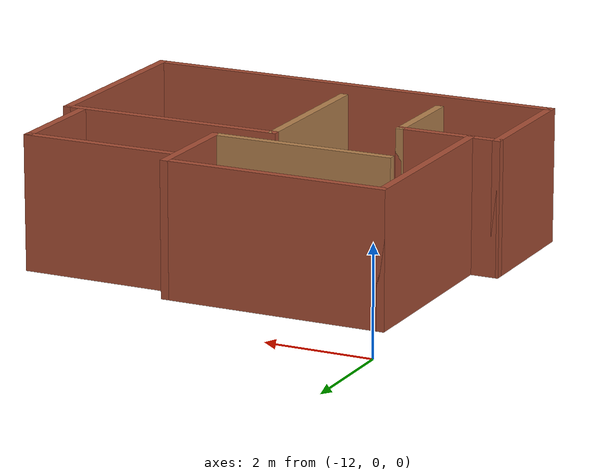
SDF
<?xml version='1.0'?>
<sdf version='1.6'>
  <model name='Room1'>
    <pose frame=''>-8.095 -4.44 0 0 -0 0</pose>
    <link name='Wall_0'>
      <collision name='Wall_0_Collision'>
        <geometry>
          <box>
            <size>2.5 0.15 2.5</size>
          </box>
        </geometry>
        <pose frame=''>0 0 1.25 0 -0 0</pose>
      </collision>
      <visual name='Wall_0_Visual'>
        <pose frame=''>0 0 1.25 0 -0 0</pose>
        <geometry>
          <box>
            <size>2.5 0.15 2.5</size>
          </box>
        </geometry>
        <material>
          <script>
            <uri>file://media/materials/scripts/gazebo.material</uri>
            <name>Gazebo/Bricks</name>
          </script>
          <ambient>1 1 1 1</ambient>
        </material>
        <meta>
          <layer>0</layer>
        </meta>
      </visual>
      <pose frame=''>-3.925 -1.825 0 0 -0 -1.5708</pose>
    </link>
    <link name='Wall_1'>
      <collision name='Wall_1_Collision'>
        <geometry>
          <box>
            <size>8 0.15 2.5</size>
          </box>
        </geometry>
        <pose frame=''>0 0 1.25 0 -0 0</pose>
      </collision>
      <visual name='Wall_1_Visual'>
        <pose frame=''>0 0 1.25 0 -0 0</pose>
        <geometry>
          <box>
            <size>8 0.15 2.5</size>
          </box>
        </geometry>
        <material>
          <script>
            <uri>file://media/materials/scripts/gazebo.material</uri>
            <name>Gazebo/Bricks</name>
          </script>
          <ambient>1 1 1 1</ambient>
        </material>
        <meta>
          <layer>0</layer>
        </meta>
      </visual>
      <pose frame=''>-0 -3 0 0 -0 0</pose>
    </link>
    <link name='Wall_10'>
      <collision name='Wall_10_Collision'>
        <geometry>
          <box>
            <size>2 0.15 2.5</size>
          </box>
        </geometry>
        <pose frame=''>0 0 1.25 0 -0 0</pose>
      </collision>
      <visual name='Wall_10_Visual'>
        <pose frame=''>0 0 1.25 0 -0 0</pose>
        <geometry>
          <box>
            <size>2 0.15 2.5</size>
          </box>
        </geometry>
        <material>
          <script>
            <uri>file://media/materials/scripts/gazebo.material</uri>
            <name>Gazebo/Bricks</name>
          </script>
          <ambient>1 1 1 1</ambient>
        </material>
        <meta>
          <layer>0</layer>
        </meta>
      </visual>
      <pose frame=''>0.695 2.075 0 0 -0 -1.5708</pose>
    </link>
    <link name='Wall_11'>
      <collision name='Wall_11_Collision'>
        <geometry>
          <box>
            <size>3.5 0.15 2.5</size>
          </box>
        </geometry>
        <pose frame=''>0 0 1.25 0 -0 0</pose>
      </collision>
      <visual name='Wall_11_Visual'>
        <pose frame=''>0 0 1.25 0 -0 0</pose>
        <geometry>
          <box>
            <size>3.5 0.15 2.5</size>
          </box>
        </geometry>
        <material>
          <script>
            <uri>file://media/materials/scripts/gazebo.material</uri>
            <name>Gazebo/Wood</name>
          </script>
          <ambient>1 1 1 1</ambient>
        </material>
        <meta>
          <layer>0</layer>
        </meta>
      </visual>
      <pose frame=''>-0.98 1.15 0 0 -0 3.14159</pose>
    </link>
    <link name='Wall_13'>
      <collision name='Wall_13_Collision'>
        <geometry>
          <box>
            <size>3 0.15 2.5</size>
          </box>
        </geometry>
        <pose frame=''>0 0 1.25 0 -0 0</pose>
      </collision>
      <visual name='Wall_13_Visual'>
        <pose frame=''>0 0 1.25 0 -0 0</pose>
        <geometry>
          <box>
            <size>3 0.15 2.5</size>
          </box>
        </geometry>
        <material>
          <script>
            <uri>file://media/materials/scripts/gazebo.material</uri>
            <name>Gazebo/Bricks</name>
          </script>
          <ambient>1 1 1 1</ambient>
        </material>
        <meta>
          <layer>0</layer>
        </meta>
      </visual>
      <pose frame=''>2.18506 2.57948 0 0 -0 0</pose>
    </link>
    <link name='Wall_14'>
      <collision name='Wall_14_Collision'>
        <geometry>
          <box>
            <size>1.96704 0.15 2.5</size>
          </box>
        </geometry>
        <pose frame=''>0 0 1.25 0 -0 0</pose>
      </collision>
      <visual name='Wall_14_Visual'>
        <pose frame=''>0 0 1.25 0 -0 0</pose>
        <geometry>
          <box>
            <size>1.96704 0.15 2.5</size>
          </box>
        </geometry>
        <material>
          <script>
            <uri>file://media/materials/scripts/gazebo.material</uri>
            <name>Gazebo/Bricks</name>
          </script>
          <ambient>1 1 1 1</ambient>
        </material>
        <meta>
          <layer>0</layer>
        </meta>
      </visual>
      <pose frame=''>3.6088 1.65575 0 0 -0 -1.57218</pose>
    </link>
    <link name='Wall_17'>
      <collision name='Wall_17_Collision'>
        <geometry>
          <box>
            <size>3 0.15 2.5</size>
          </box>
        </geometry>
        <pose frame=''>0 0 1.25 0 -0 0</pose>
      </collision>
      <visual name='Wall_17_Visual'>
        <pose frame=''>0 0 1.25 0 -0 0</pose>
        <geometry>
          <box>
            <size>3 0.15 2.5</size>
          </box>
        </geometry>
        <material>
          <script>
            <uri>file://media/materials/scripts/gazebo.material</uri>
            <name>Gazebo/Wood</name>
          </script>
          <ambient>1 1 1 1</ambient>
        </material>
        <meta>
          <layer>0</layer>
        </meta>
      </visual>
      <pose frame=''>-0.175 -0.825 0 0 -0 -1.5708</pose>
    </link>
    <link name='Wall_2'>
      <collision name='Wall_2_Collision'>
        <geometry>
          <box>
            <size>3.75 0.15 2.5</size>
          </box>
        </geometry>
        <pose frame=''>0 0 1.25 0 -0 0</pose>
      </collision>
      <visual name='Wall_2_Visual'>
        <pose frame=''>0 0 1.25 0 -0 0</pose>
        <geometry>
          <box>
            <size>3.75 0.15 2.5</size>
          </box>
        </geometry>
        <material>
          <script>
            <uri>file://media/materials/scripts/gazebo.material</uri>
            <name>Gazebo/Bricks</name>
          </script>
          <ambient>1 1 1 1</ambient>
        </material>
        <meta>
          <layer>0</layer>
        </meta>
      </visual>
      <pose frame=''>3.925 -1.2 0 0 -0 1.5708</pose>
    </link>
    <link name='Wall_3'>
      <collision name='Wall_3_Collision'>
        <geometry>
          <box>
            <size>4.25 0.15 2.5</size>
          </box>
        </geometry>
        <pose frame=''>0 0 1.25 0 -0 0</pose>
      </collision>
      <visual name='Wall_3_Visual'>
        <pose frame=''>0 0 1.25 0 -0 0</pose>
        <geometry>
          <box>
            <size>4.25 0.15 2.5</size>
          </box>
        </geometry>
        <material>
          <script>
            <uri>file://media/materials/scripts/gazebo.material</uri>
            <name>Gazebo/Bricks</name>
          </script>
          <ambient>1 1 1 1</ambient>
        </material>
        <meta>
          <layer>0</layer>
        </meta>
      </visual>
      <pose frame=''>1.875 0.6 0 0 -0 3.14159</pose>
    </link>
    <link name='Wall_5'>
      <collision name='Wall_5_Collision'>
        <geometry>
          <box>
            <size>2 0.15 2.5</size>
          </box>
        </geometry>
        <pose frame=''>0 0 1.25 0 -0 0</pose>
      </collision>
      <visual name='Wall_5_Visual'>
        <pose frame=''>0 0 1.25 0 -0 0</pose>
        <geometry>
          <box>
            <size>2 0.15 2.5</size>
          </box>
        </geometry>
        <material>
          <script>
            <uri>file://media/materials/scripts/gazebo.material</uri>
            <name>Gazebo/Bricks</name>
          </script>
          <ambient>1 1 1 1</ambient>
        </material>
        <meta>
          <layer>0</layer>
        </meta>
      </visual>
      <pose frame=''>-3 -0.65 0 0 -0 0</pose>
    </link>
    <link name='Wall_6'>
      <collision name='Wall_6_Collision'>
        <geometry>
          <box>
            <size>1.75 0.15 2.5</size>
          </box>
        </geometry>
        <pose frame=''>0 0 1.25 0 -0 0</pose>
      </collision>
      <visual name='Wall_6_Visual'>
        <pose frame=''>0 0 1.25 0 -0 0</pose>
        <geometry>
          <box>
            <size>1.75 0.15 2.5</size>
          </box>
        </geometry>
        <material>
          <script>
            <uri>file://media/materials/scripts/gazebo.material</uri>
            <name>Gazebo/Wood</name>
          </script>
          <ambient>1 1 1 1</ambient>
        </material>
        <meta>
          <layer>0</layer>
        </meta>
      </visual>
      <pose frame=''>-2.075 -1.45 0 0 -0 -1.5708</pose>
    </link>
    <link name='Wall_8'>
      <collision name='Wall_8_Collision'>
        <geometry>
          <box>
            <size>3.75 0.15 2.5</size>
          </box>
        </geometry>
        <pose frame=''>0 0 1.25 0 -0 0</pose>
      </collision>
      <visual name='Wall_8_Visual'>
        <pose frame=''>0 0 1.25 0 -0 0</pose>
        <geometry>
          <box>
            <size>3.75 0.15 2.5</size>
          </box>
        </geometry>
        <material>
          <script>
            <uri>file://media/materials/scripts/gazebo.material</uri>
            <name>Gazebo/Bricks</name>
          </script>
          <ambient>1 1 1 1</ambient>
        </material>
        <meta>
          <layer>0</layer>
        </meta>
      </visual>
      <pose frame=''>-3.405 1.2 0 0 -0 1.5708</pose>
    </link>
    <link name='Wall_9'>
      <collision name='Wall_9_Collision'>
        <geometry>
          <box>
            <size>4.25 0.15 2.5</size>
          </box>
        </geometry>
        <pose frame=''>0 0 1.25 0 -0 0</pose>
      </collision>
      <visual name='Wall_9_Visual'>
        <pose frame=''>0 0 1.25 0 -0 0</pose>
        <geometry>
          <box>
            <size>4.25 0.15 2.5</size>
          </box>
        </geometry>
        <material>
          <script>
            <uri>file://media/materials/scripts/gazebo.material</uri>
            <name>Gazebo/Bricks</name>
          </script>
          <ambient>1 1 1 1</ambient>
        </material>
        <meta>
          <layer>0</layer>
        </meta>
      </visual>
      <pose frame=''>-1.355 3 0 0 -0 0</pose>
    </link>
    <static>1</static>
  </model>
</sdf>
